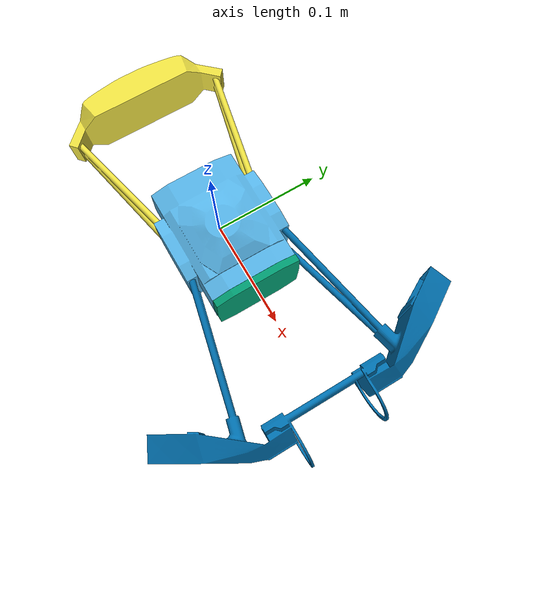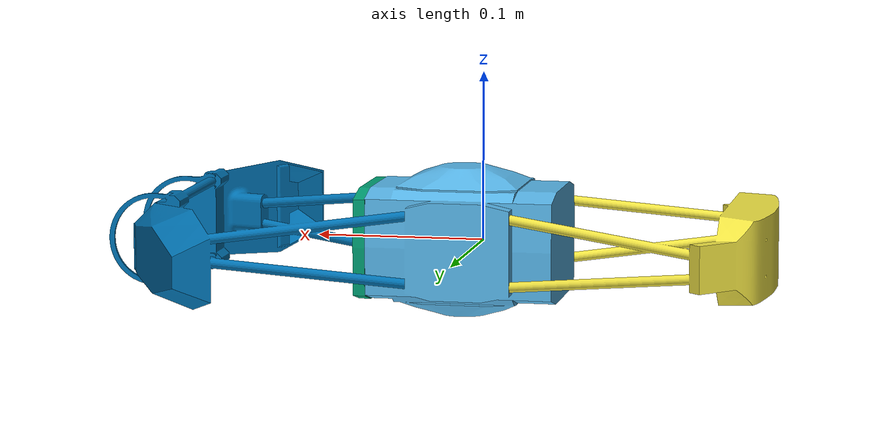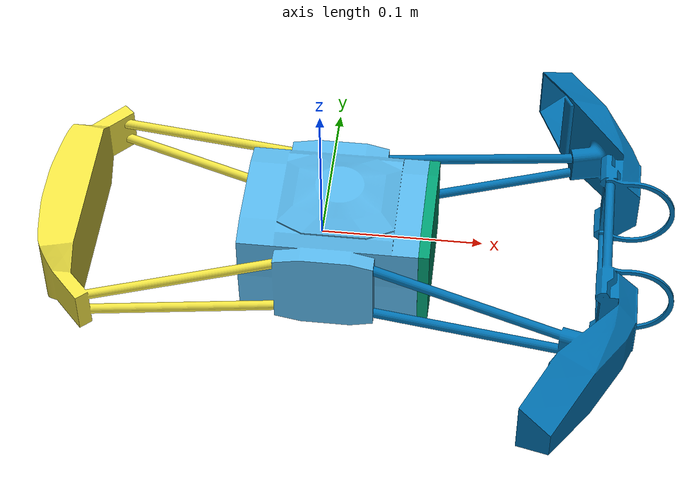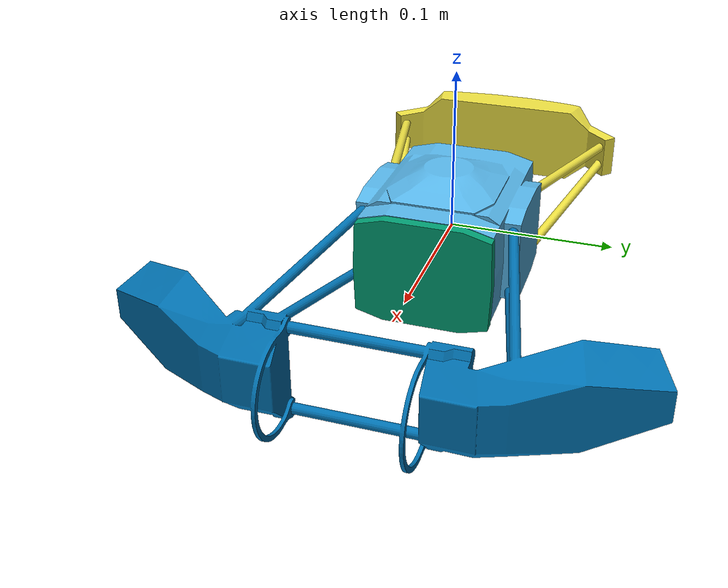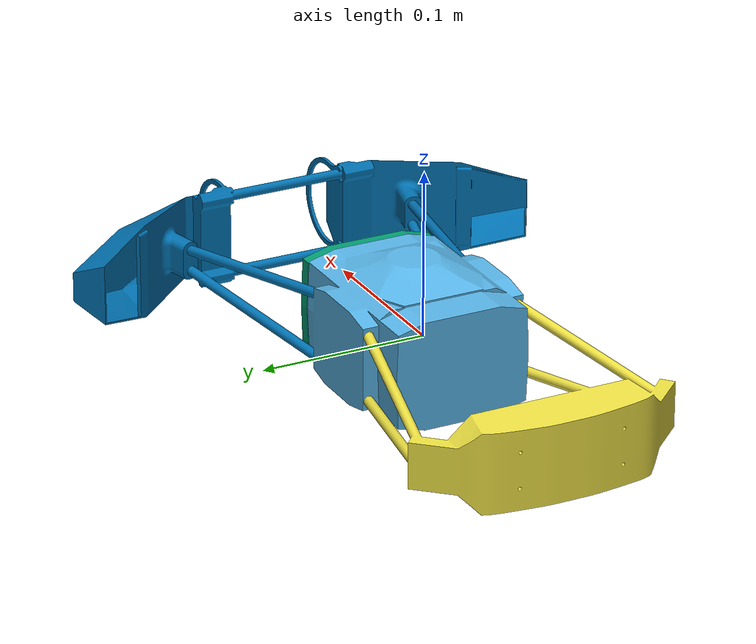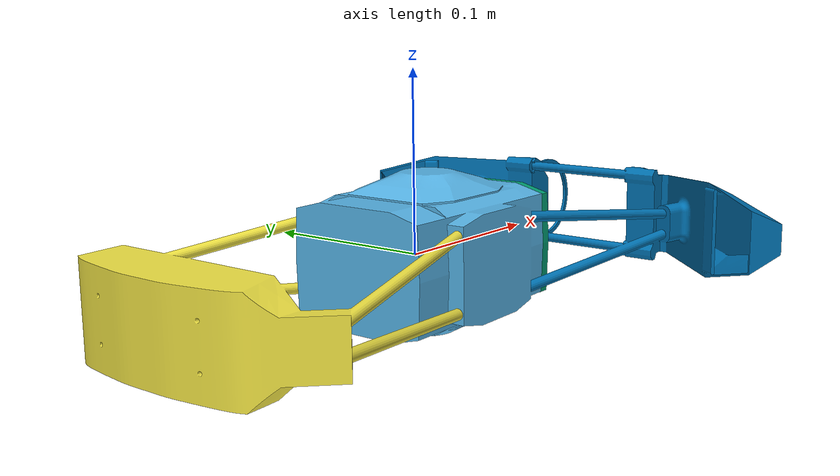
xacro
<?xml version="1.0" encoding="utf-8"?>
<robot xmlns:xacro="http://www.ros.org/wiki/xacro" name="asio">

  <!-- Include external properties -->
  <xacro:include filename="$(find asio)/urdf/asio_properties.xacro" />
  <xacro:include filename="$(find hector_quadrotor_gazebo)/urdf/quadrotor_plugins.gazebo.xacro" />

  <!-- Common macros for link geometry -->
  <xacro:macro name="link_geometry" params="name mesh origin scale">
    <visual name="${name}_visual">
      <origin xyz="${origin}" rpy="${originNull}"/>
      <geometry>
        <mesh filename="package://asio/meshes/${mesh}.stl" scale="${scale}"/>
      </geometry>
    </visual>
    <collision name="${name}_collision">
      <origin xyz="${origin}" rpy="${originNull}"/>
      <geometry>
        <mesh filename="package://asio/meshes/${mesh}.stl" scale="${scale}"/>
      </geometry>
    </collision>
  </xacro:macro>

  <!-- Base link -->
  <link name="base_link"/>

  <!-- Central part link -->
  <link name="Parte_Central">
    <inertial>
      <origin xyz="${originInertial_parteCentral}" rpy="${originNull}"/>
      <mass value="3.138446193635996"/>
      <inertia
        ixx="${inertia_ixx_parteCentral}" ixy="${inertia_ixy_parteCentral}" ixz="${inertia_ixz_parteCentral}"
        iyy="${inertia_iyy_parteCentral}" iyz="${inertia_iyz_parteCentral}" izz="${inertia_izz_parteCentral}" />
    </inertial>
    <xacro:link_geometry name="Parte_Central" mesh="Parte_Central" origin="${originNull}" scale="${scale}"/>
  </link>

  <!-- Battery link -->
  <link name="Bateria">
    <inertial>
      <origin xyz="${originInertial_Bateria}" rpy="${originNull}"/>
      <mass value="2.010476962717196"/>
      <inertia
        ixx="${inertia_ixx_Bateria}"
        iyy="${inertia_iyy_Bateria}"
        izz="${inertia_izz_Bateria}"
        ixy="${inertia_ixy_Bateria}"
        iyz="${inertia_iyz_Bateria}"
        ixz="${inertia_ixz_Bateria}"/>
    </inertial>
    <xacro:link_geometry name="Bateria" mesh="Bateria" origin="${originNull}" scale="${scale}"/>
  </link>

  <!-- Rear part link -->
  <link name="Parte_Posterior">
    <inertial>
      <origin xyz="${originInertial_partePosterior}" rpy="${originNull}"/>
      <mass value="1.318635659936295"/>
      <inertia
        ixx="${inertia_ixx_partePosterior}"
        iyy="${inertia_iyy_partePosterior}"
        izz="${inertia_izz_partePosterior}"
        ixy="${inertia_ixy_partePosterior}"
        iyz="${inertia_iyz_partePosterior}"
        ixz="${inertia_ixz_partePosterior}"/>
    </inertial>
    <xacro:link_geometry name="Parte_Posterior" mesh="Parte_Posterior" origin="${originNull}" scale="${scale}"/>
  </link>

  <!-- Front part link -->
  <link name="Parte_Frontal">
    <inertial>
      <origin xyz="${originInertial_parteFrontal}" rpy="0.0 2.7755575615628914e-17 0.0"/>
      <mass value="0.5204162956573936"/>
      <inertia
        ixx="${inertia_ixx_parteFrontal}"
        iyy="${inertia_iyy_parteFrontal}"
        izz="${inertia_izz_parteFrontal}"
        ixy="${inertia_ixy_parteFrontal}"
        iyz="${inertia_iyz_parteFrontal}"
        ixz="${inertia_ixz_parteFrontal}"/>
    </inertial>
    <visual name="Parte_Frontal_visual">
      <origin xyz="${originVisual_parteFrontal}" rpy="3.025188689399567 -0.2254090023095731 3.141592653589793"/>
      <geometry>
        <mesh filename="package://asio/meshes/Parte_Frontal.stl" scale="${scale}"/>
      </geometry>
    </visual>
    <collision name="Parte_Frontal_collision">
      <origin xyz="${originCollision_parteFrontal}" rpy="3.025188689399567 -0.2254090023095731 3.141592653589793"/>
      <geometry>
        <mesh filename="package://asio/meshes/Parte_Frontal.stl" scale="${scale}"/>
      </geometry>
    </collision>
  </link>

  <!-- Joints -->
  <joint name="base_to_central" type="fixed">
    <parent link="base_link"/>
    <child link="Parte_Central"/>
    <origin xyz="${originNull}" rpy="-1.570796327 -3.14159265359 -1.570796327"/>
  </joint>

  <joint name="Parte_Central_to_Bateria" type="fixed">
    <parent link="Parte_Central"/>
    <child link="Bateria"/>
    <origin xyz="-0.04098 -0.0334 0.070" rpy="3.14159265359 0 3.14159265359"/>
  </joint>

  <joint name="Parte_Central_to_Parte_Frontal" type="fixed">
    <parent link="Parte_Central"/>
    <child link="Parte_Frontal"/>
    <origin xyz="-0.04601171 0.02021968 0.03570749" rpy="3.0221958394403727 0.22385749744281186 3.1149670769656055"/>
  </joint>

  <joint name="Parte_Central_to_Parte_Posterior" type="fixed">
    <parent link="Parte_Central"/>
    <child link="Parte_Posterior"/>
    <origin xyz="${originNull}" rpy="0 0 3.14159265359"/>
  </joint>

</robot>

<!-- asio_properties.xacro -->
<robot xmlns:xacro="http://www.ros.org/wiki/xacro" name="asio">

  <!-- Null origin for reuse -->
  <xacro:property name="originNull" value="0.0 0.0 0.0"/>

  <!-- Mass and inertia grouping per link -->
  <!-- Parte Central -->
  <xacro:property name="mass_parteCentral"   value="3.138446193635996"/>
  <xacro:property name="inertia_ixx_parteCentral" value="0.004785506665265726"/>
  <xacro:property name="inertia_iyy_parteCentral" value="0.005508865066852597"/>
  <xacro:property name="inertia_izz_parteCentral" value="0.004518252365516609"/>
  <xacro:property name="inertia_ixy_parteCentral" value="4.283720045350491e-18"/>
  <xacro:property name="inertia_iyz_parteCentral" value="4.283724845837679e-18"/>
  <xacro:property name="inertia_ixz_parteCentral" value="5.711623526809198e-18"/>

  <!-- Bateria -->
  <xacro:property name="mass_Bateria"   value="2.010476962717196"/>
  <xacro:property name="inertia_ixx_Bateria" value="0.0019164616413558865"/>
  <xacro:property name="inertia_iyy_Bateria" value="0.002349164303793374"/>
  <xacro:property name="inertia_izz_Bateria" value="0.0010775980951593335"/>
  <xacro:property name="inertia_ixy_Bateria" value="7.345625586927895e-19"/>
  <xacro:property name="inertia_iyz_Bateria" value="6.128232367052389e-19"/>
  <xacro:property name="inertia_ixz_Bateria" value="3.335338449455067e-18"/>

  <!-- Parte Posterior -->
  <xacro:property name="mass_partePosterior"   value="1.318635659936295"/>
  <xacro:property name="inertia_ixx_partePosterior" value="0.0010531683287138202"/>
  <xacro:property name="inertia_iyy_partePosterior" value="0.002797674984292977"/>
  <xacro:property name="inertia_izz_partePosterior" value="0.0022417941507662563"/>
  <xacro:property name="inertia_ixy_partePosterior" value="-1.0709300804170552e-18"/>
  <xacro:property name="inertia_iyz_partePosterior" value="4.048066801811789e-11"/>
  <xacro:property name="inertia_ixz_partePosterior" value="-3.1766925604898303e-18"/>

  <!-- Parte Frontal -->
  <xacro:property name="mass_parteFrontal"   value="0.5204162956573936"/>
  <xacro:property name="inertia_ixx_parteFrontal" value="0.0009635131587760126"/>
  <xacro:property name="inertia_iyy_parteFrontal" value="0.0039137114365482275"/>
  <xacro:property name="inertia_izz_parteFrontal" value="0.003227132755260805"/>
  <xacro:property name="inertia_ixy_parteFrontal" value="1.4863595410567824e-05"/>
  <xacro:property name="inertia_iyz_parteFrontal" value="6.481996071699037e-05"/>
  <xacro:property name="inertia_ixz_parteFrontal" value="0.0005478687678166486"/>

  <!-- Origin Inertial -->
  <xacro:property name="originInertial_parteCentral" value="-1.1374312268591253e-17 1.7061468402886883e-17 8.965081071660529e-08"/>
  <xacro:property name="originInertial_Bateria" value="-0.04150000000000005 0.032974999999999983 0.04328428018771682"/>
  <xacro:property name="originInertial_partePosterior" value="-2.7071668186428414e-17 1.9351245627905367e-09 -0.15101119979291508"/>
  <xacro:property name="originInertial_parteFrontal" value="-0.07175107287933148 -0.006237280533320282 -0.10689260849430499"/>

  <!-- Origin Visual & Collision for frontal -->
  <xacro:property name="originVisual_parteFrontal" value="-0.03744581163907984 -0.02422996054042262 0.04256357552446358"/>
  <xacro:property name="originCollision_parteFrontal" value="-0.03744581163907984 -0.02422996054042262 0.04256357552446358"/>

  <!-- Scale -->
  <xacro:property name="scale" value="0.001 0.001 0.001"/>

  <!-- Macro for inertial -->
  <xacro:macro name="inertial_props" params="prefix mass ixx iyy izz ixy iyz ixz">
    <inertial>
      <origin xyz="${prefix}" rpy="${originNull}"/>
      <mass value="${mass}"/>
      <inertia
        ixx="${ixx}" iyy="${iyy}" izz="${izz}"
        ixy="${ixy}" iyz="${iyz}" ixz="${ixz}"/>
    </inertial>
  </xacro:macro>

</robot>
